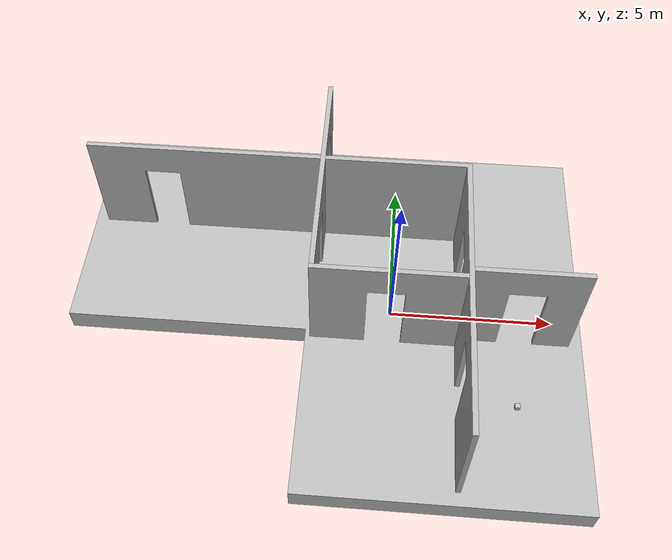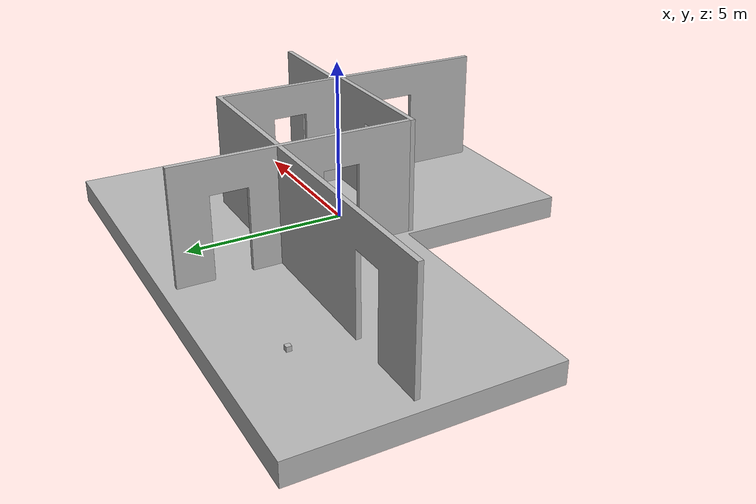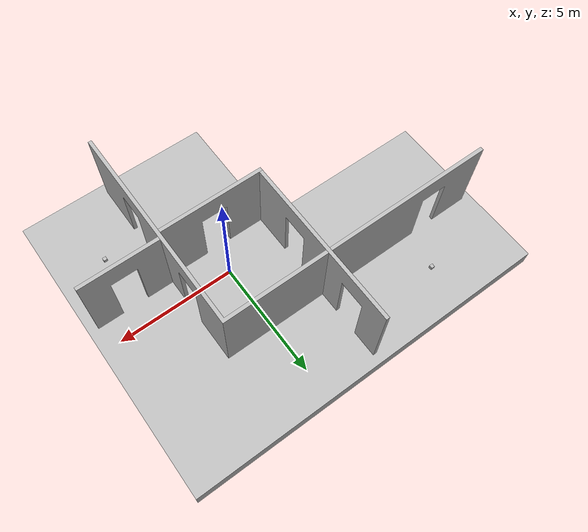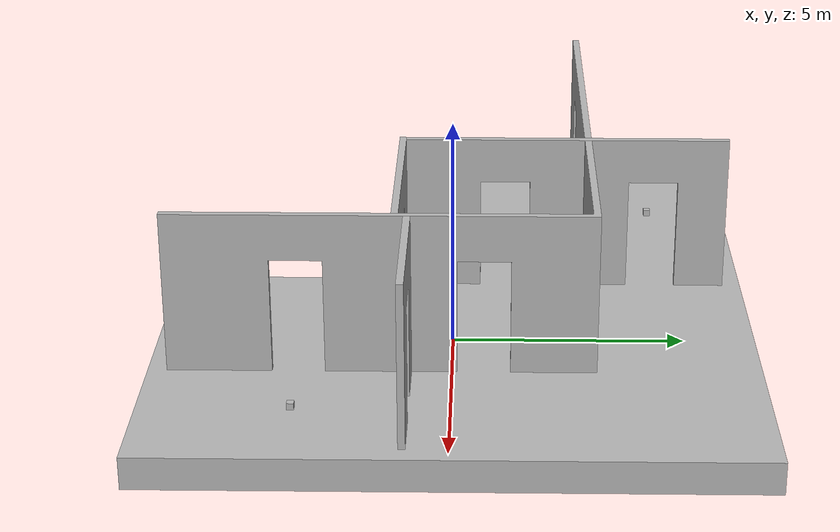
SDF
<sdf version="1.5">
 <world name="default">
  <physics type="ode">
   <max_step_size>0.004</max_step_size>
   <real_time_factor>1.0</real_time_factor>
   <real_time_update_rate>250</real_time_update_rate>
  </physics>
  <plugin name="gz::sim::systems::Physics" filename="gz-sim-physics-system"/>
  <plugin name="gz::sim::systems::UserCommands" filename="gz-sim-user-commands-system"/>
  <plugin name="gz::sim::systems::SceneBroadcaster" filename="gz-sim-scene-broadcaster-system"/>
  <plugin name="gz::sim::systems::Contact" filename="gz-sim-contact-system"/>
  <plugin name="gz::sim::systems::Imu" filename="gz-sim-imu-system"/>
  <plugin name="gz::sim::systems::AirPressure" filename="gz-sim-air-pressure-system"/>
  <plugin name="gz::sim::systems::ApplyLinkWrench" filename="gz-sim-apply-link-wrench-system"/>
  <plugin name="gz::sim::systems::NavSat" filename="gz-sim-navsat-system"/>
  <plugin name="gz::sim::systems::Sensors" filename="gz-sim-sensors-system">
   <render_engine>ogre2</render_engine>
  </plugin>
  <gravity>0 0 -9.8</gravity>
  <magnetic_field>6e-06 2.3e-05 -4.2e-05</magnetic_field>
  <atmosphere type="adiabatic"/>
  <scene>
   <grid>false</grid>
   <ambient>0.4 0.4 0.4 1</ambient>
   <background>0.7 0.7 0.7 1</background>
   <shadows>true</shadows>
  </scene>
  <spherical_coordinates>
   <surface_model>EARTH_WGS84</surface_model>
   <world_frame_orientation>ENU</world_frame_orientation>
   <latitude_deg>47.397971057728974</latitude_deg>
   <longitude_deg>8.546163739800146</longitude_deg>
   <elevation>0</elevation>
  </spherical_coordinates>
  <light type="directional" name="sun">
   <pose>0 0 10 0 0 0</pose>
   <diffuse>0.8 0.8 0.8 1</diffuse>
   <specular>0.8 0.8 0.8 1</specular>
   <attenuation>
    <range>1000</range>
    <constant>0.9</constant>
    <linear>0.01</linear>
    <quadratic>0.001</quadratic>
   </attenuation>
   <direction>-0.5 0.1 -0.9</direction>
  </light>
  <include>
   <name>0_floor</name>
   <uri>model://0_floor</uri>
   <static>true</static>
   <pose relative_to="world">0 0 0.3 0 0 0</pose>
  </include>
  <include>
   <name>0_wall_1_woqr</name>
   <uri>model://0_wall_1_woqr</uri>
   <static>true</static>
   <pose relative_to="world">0 0 0.3 0 0 0</pose>
  </include>
  <include>
   <name>0_wall_2_woqr</name>
   <uri>model://0_wall_2_woqr</uri>
   <static>true</static>
   <pose relative_to="world">0 0 0.3 0 0 0</pose>
  </include>
  <include>
   <name>0_wall_3_woqr</name>
   <uri>model://0_wall_3_woqr</uri>
   <static>true</static>
   <pose relative_to="world">0 0 0.3 0 0 0</pose>
  </include>
  <include>
   <name>0_wall_4_woqr</name>
   <uri>model://0_wall_4_woqr</uri>
   <static>true</static>
   <pose relative_to="world">0 0 0.3 0 0 0</pose>
  </include>
  <include>
   <name>0_wall_5_woqr</name>
   <uri>model://0_wall_5_woqr</uri>
   <static>true</static>
   <pose relative_to="world">0 0 0.3 0 0 0</pose>
  </include>
  <include>
   <name>cube_blue</name>
   <uri>model://1cube_blue</uri>
   <static>true</static>
   <pose>3.7656221066420832 -3.1914413552574801 0.370000000596046448 0 0 0</pose>
  </include>
  <include>
   <name>cube_green</name>
   <uri>model://1cube_green</uri>
   <static>true</static>
   <pose>-6.4451780721364305 4.6555204525204577 0.370000000298023225 0 0 0</pose>
  </include>
 </world>
</sdf>

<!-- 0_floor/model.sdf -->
<sdf version="1.5">
    <model name="floor">
        <static>true</static>
        <link name="link">
            <collision name="collision1">
                <pose>0 0 0 0 0 0</pose>
                <geometry>
                    <mesh>
                        <uri>meshes/floor.dae</uri>
                    </mesh>
                </geometry>
            </collision>
            <visual name="visual1">
              <pose>0 0 0 0 0 0</pose>
              <geometry>
              <mesh>
                 <uri>meshes/floor.dae</uri>
              </mesh>
              </geometry>
             </visual>
        </link>
    </model>
</sdf>

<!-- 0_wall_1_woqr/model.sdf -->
<sdf version="1.5">
    <model name="0_wall_1_woqr">
        <static>true</static>
        <link name="link">
            <collision name="collision1">
                <pose>0 0 0 0 0 0</pose>
                <geometry>
                    <mesh>
                        <uri>meshes/0_wall_1_woqr.dae</uri>
                    </mesh>
                </geometry>
            </collision>
            <visual name="visual1">
              <pose>0 0 0 0 0 0</pose>
              <geometry>
              <mesh>
                 <uri>meshes/0_wall_1_woqr.dae</uri>
              </mesh>
              </geometry>
             </visual>
        </link>
    </model>
</sdf>

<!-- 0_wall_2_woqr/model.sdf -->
<sdf version="1.5">
    <model name="0_wall_2_woqr">
        <static>true</static>
        <link name="link">
            <collision name="collision1">
                <pose>0 0 0 0 0 0</pose>
                <geometry>
                    <mesh>
                        <uri>meshes/0_wall_2_woqr.dae</uri>
                    </mesh>
                </geometry>
            </collision>
            <visual name="visual1">
              <pose>0 0 0 0 0 0</pose>
              <geometry>
              <mesh>
                 <uri>meshes/0_wall_2_woqr.dae</uri>
              </mesh>
              </geometry>
             </visual>
        </link>
    </model>
</sdf>

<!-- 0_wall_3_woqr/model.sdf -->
<sdf version="1.5">
    <model name="0_wall_3_woqr">
        <static>true</static>
        <link name="link">
            <collision name="collision1">
                <pose>0 0 0 0 0 0</pose>
                <geometry>
                    <mesh>
                        <uri>meshes/0_wall_3_woqr.dae</uri>
                    </mesh>
                </geometry>
            </collision>
            <visual name="visual1">
              <pose>0 0 0 0 0 0</pose>
              <geometry>
              <mesh>
                 <uri>meshes/0_wall_3_woqr.dae</uri>
              </mesh>
              </geometry>
             </visual>
        </link>
    </model>
</sdf>

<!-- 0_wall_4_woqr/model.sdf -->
<sdf version="1.5">
    <model name="0_wall_4_woqr">
        <static>true</static>
        <link name="link">
            <collision name="collision1">
                <pose>0 0 0 0 0 0</pose>
                <geometry>
                    <mesh>
                        <uri>meshes/0_wall_4_woqr.dae</uri>
                    </mesh>
                </geometry>
            </collision>
            <visual name="visual1">
              <pose>0 0 0 0 0 0</pose>
              <geometry>
              <mesh>
                 <uri>meshes/0_wall_4_woqr.dae</uri>
              </mesh>
              </geometry>
             </visual>
        </link>
    </model>
</sdf>

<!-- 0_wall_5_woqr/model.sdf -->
<sdf version="1.5">
    <model name="0_wall_5_woqr">
        <static>true</static>
        <link name="link">
            <collision name="collision1">
                <pose>0 0 0 0 0 0</pose>
                <geometry>
                    <mesh>
                        <uri>meshes/0_wall_5_woqr.dae</uri>
                    </mesh>
                </geometry>
            </collision>
            <visual name="visual1">
              <pose>0 0 0 0 0 0</pose>
              <geometry>
              <mesh>
                 <uri>meshes/0_wall_5_woqr.dae</uri>
              </mesh>
              </geometry>
             </visual>
        </link>
    </model>
</sdf>

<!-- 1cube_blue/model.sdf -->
<sdf version="1.5">
    <model name="1cube">
        <static>true</static>
        <link name="link">
            <collision name="collision1">
                <pose>0 0 0 0 0 0</pose>
                <geometry>
                    <mesh>
                        <uri>model://1cube_blue/meshes/cube.dae</uri>
                    </mesh>
                </geometry>
            </collision>
            <visual name="visual1">
              <pose>0 0 0 0 0 0</pose>
              <geometry>
              <mesh>
                 <uri>model://1cube_blue/meshes/cube.dae</uri>
              </mesh>
              </geometry>
             </visual>
        </link>
    </model>
</sdf>

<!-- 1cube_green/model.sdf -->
<sdf version="1.5">
    <model name="1cube">
        <static>true</static>
        <link name="link">
            <collision name="collision1">
                <pose>0 0 0 0 0 0</pose>
                <geometry>
                    <mesh>
                        <uri>model://1cube_green/meshes/cube.dae</uri>
                    </mesh>
                </geometry>
            </collision>
            <visual name="visual1">
              <pose>0 0 0 0 0 0</pose>
              <geometry>
              <mesh>
                 <uri>model://1cube_green/meshes/cube.dae</uri>
              </mesh>
              </geometry>
             </visual>
        </link>
    </model>
</sdf>
